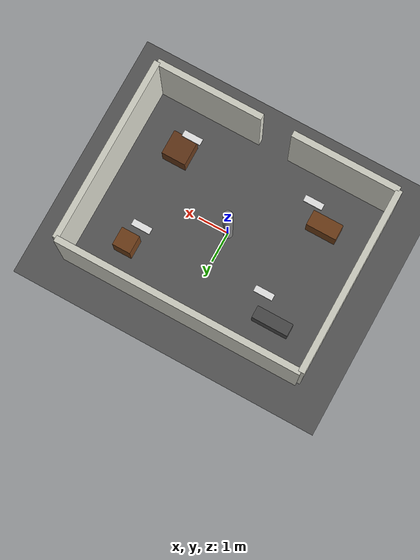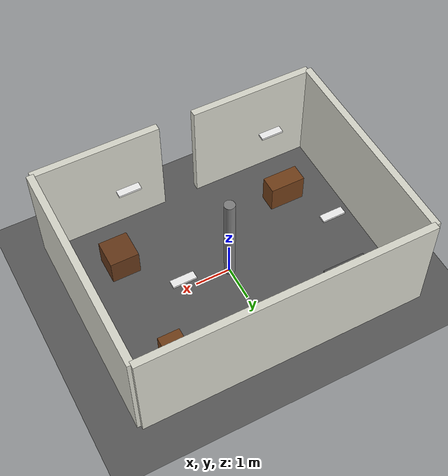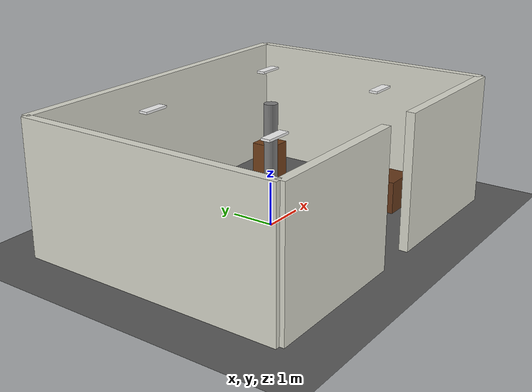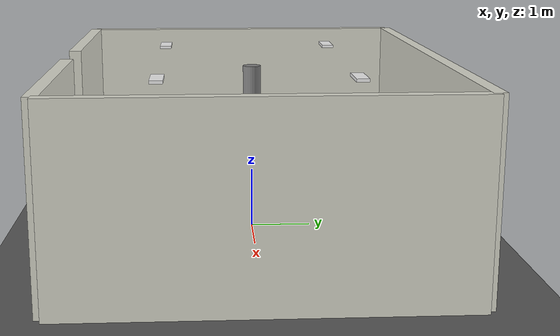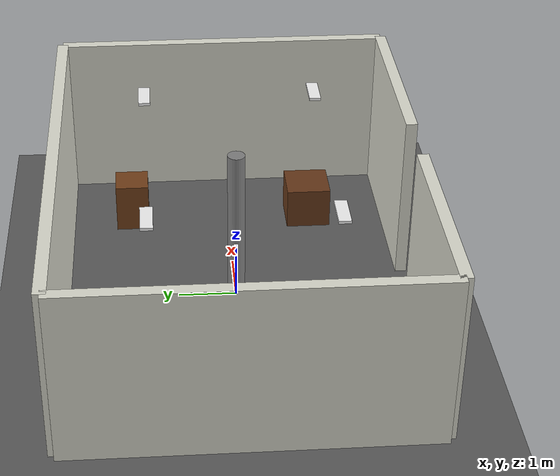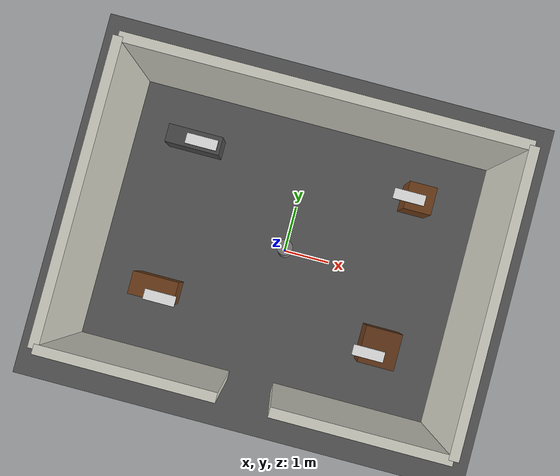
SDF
<?xml version="1.0"?>
<sdf version="1.6">
  <world name="basement_room_world">

    <!-- ── Physics ─────────────────────────────────────────────────────── -->
    <physics type="ode">
      <max_step_size>0.001</max_step_size>
      <real_time_factor>1.0</real_time_factor>
      <real_time_update_rate>1000</real_time_update_rate>
    </physics>

    <!-- ── Sun directional light ───────────────────────────────────────── -->
    <light name="sun" type="directional">
      <cast_shadows>true</cast_shadows>
      <pose>0 0 10 0 0 0</pose>
      <diffuse>0.4 0.4 0.4 1</diffuse>
      <specular>0.1 0.1 0.1 1</specular>
      <direction>-0.5 0.1 -0.9</direction>
    </light>

    <!-- ── 4 ceiling lights ────────────────────────────────────────────── -->
    <light name="ceiling_light_1" type="point">
      <pose>-2.0 -1.5 2.8 0 0 0</pose>
      <diffuse>0.95 0.92 0.85 1</diffuse>
      <specular>0.1 0.1 0.1 1</specular>
      <attenuation>
        <range>10</range>
        <constant>0.3</constant>
        <linear>0.08</linear>
        <quadratic>0.02</quadratic>
      </attenuation>
    </light>

    <light name="ceiling_light_2" type="point">
      <pose>2.0 -1.5 2.8 0 0 0</pose>
      <diffuse>0.95 0.92 0.85 1</diffuse>
      <specular>0.1 0.1 0.1 1</specular>
      <attenuation>
        <range>10</range>
        <constant>0.3</constant>
        <linear>0.08</linear>
        <quadratic>0.02</quadratic>
      </attenuation>
    </light>

    <light name="ceiling_light_3" type="point">
      <pose>-2.0 1.5 2.8 0 0 0</pose>
      <diffuse>0.95 0.92 0.85 1</diffuse>
      <specular>0.1 0.1 0.1 1</specular>
      <attenuation>
        <range>10</range>
        <constant>0.3</constant>
        <linear>0.08</linear>
        <quadratic>0.02</quadratic>
      </attenuation>
    </light>

    <light name="ceiling_light_4" type="point">
      <pose>2.0 1.5 2.8 0 0 0</pose>
      <diffuse>0.95 0.92 0.85 1</diffuse>
      <specular>0.1 0.1 0.1 1</specular>
      <attenuation>
        <range>10</range>
        <constant>0.3</constant>
        <linear>0.08</linear>
        <quadratic>0.02</quadratic>
      </attenuation>
    </light>

    <!-- ── Floor ───────────────────────────────────────────────────────── -->
    <model name="floor">
      <static>true</static>
      <link name="floor_link">
        <collision name="col">
          <geometry>
            <plane>
              <normal>0 0 1</normal>
              <size>12 10</size>
            </plane>
          </geometry>
          <surface>
            <friction>
              <ode><mu>1.0</mu><mu2>1.0</mu2></ode>
            </friction>
          </surface>
        </collision>
        <visual name="vis">
          <geometry>
            <plane>
              <normal>0 0 1</normal>
              <size>12 10</size>
            </plane>
          </geometry>
          <material>
            <ambient>0.35 0.35 0.35 1</ambient>
            <diffuse>0.35 0.35 0.35 1</diffuse>
          </material>
        </visual>
      </link>
    </model>

    <model name="room">
      <static>true</static>

      <!-- North wall: y = +3 -->
      <link name="wall_north">
        <pose>0 3.0 1.5 0 0 0</pose>
        <collision name="col">
          <geometry><box><size>8.0 0.2 3.0</size></box></geometry>
        </collision>
        <visual name="vis">
          <geometry><box><size>8.0 0.2 3.0</size></box></geometry>
          <material>
            <ambient>0.85 0.85 0.8 1</ambient>
            <diffuse>0.85 0.85 0.8 1</diffuse>
          </material>
        </visual>
      </link>

      <!-- South wall LEFT of doorway: x from -4 to -0.5 (3.5m wide) -->
      <link name="wall_south_left">
        <pose>-2.25 -3.0 1.5 0 0 0</pose>
        <collision name="col">
          <geometry><box><size>3.5 0.2 3.0</size></box></geometry>
        </collision>
        <visual name="vis">
          <geometry><box><size>3.5 0.2 3.0</size></box></geometry>
          <material>
            <ambient>0.85 0.85 0.8 1</ambient>
            <diffuse>0.85 0.85 0.8 1</diffuse>
          </material>
        </visual>
      </link>

      <!-- South wall RIGHT of doorway: x from +0.5 to +4 (3.5m wide) -->
      <link name="wall_south_right">
        <pose>2.25 -3.0 1.5 0 0 0</pose>
        <collision name="col">
          <geometry><box><size>3.5 0.2 3.0</size></box></geometry>
        </collision>
        <visual name="vis">
          <geometry><box><size>3.5 0.2 3.0</size></box></geometry>
          <material>
            <ambient>0.85 0.85 0.8 1</ambient>
            <diffuse>0.85 0.85 0.8 1</diffuse>
          </material>
        </visual>
      </link>

      <!-- East wall: x = +4 -->
      <link name="wall_east">
        <pose>4.0 0 1.5 0 0 0</pose>
        <collision name="col">
          <geometry><box><size>0.2 6.0 3.0</size></box></geometry>
        </collision>
        <visual name="vis">
          <geometry><box><size>0.2 6.0 3.0</size></box></geometry>
          <material>
            <ambient>0.85 0.85 0.8 1</ambient>
            <diffuse>0.85 0.85 0.8 1</diffuse>
          </material>
        </visual>
      </link>

      <!-- West wall: x = -4 -->
      <link name="wall_west">
        <pose>-4.0 0 1.5 0 0 0</pose>
        <collision name="col">
          <geometry><box><size>0.2 6.0 3.0</size></box></geometry>
        </collision>
        <visual name="vis">
          <geometry><box><size>0.2 6.0 3.0</size></box></geometry>
          <material>
            <ambient>0.85 0.85 0.8 1</ambient>
            <diffuse>0.85 0.85 0.8 1</diffuse>
          </material>
        </visual>
      </link>

      <!-- ── 4 ceiling light fixture visuals ────────────────────────── -->
      <link name="light_fixture_1">
        <pose>-2.0 -1.5 2.9 0 0 0</pose>
        <visual name="vis">
          <geometry><box><size>0.6 0.2 0.05</size></box></geometry>
          <material>
            <ambient>0.95 0.95 0.95 1</ambient>
            <diffuse>0.95 0.95 0.95 1</diffuse>
            <emissive>0.8 0.8 0.8 1</emissive>
          </material>
        </visual>
      </link>

      <link name="light_fixture_2">
        <pose>2.0 -1.5 2.9 0 0 0</pose>
        <visual name="vis">
          <geometry><box><size>0.6 0.2 0.05</size></box></geometry>
          <material>
            <ambient>0.95 0.95 0.95 1</ambient>
            <diffuse>0.95 0.95 0.95 1</diffuse>
            <emissive>0.8 0.8 0.8 1</emissive>
          </material>
        </visual>
      </link>

      <link name="light_fixture_3">
        <pose>-2.0 1.5 2.9 0 0 0</pose>
        <visual name="vis">
          <geometry><box><size>0.6 0.2 0.05</size></box></geometry>
          <material>
            <ambient>0.95 0.95 0.95 1</ambient>
            <diffuse>0.95 0.95 0.95 1</diffuse>
            <emissive>0.8 0.8 0.8 1</emissive>
          </material>
        </visual>
      </link>

      <link name="light_fixture_4">
        <pose>2.0 1.5 2.9 0 0 0</pose>
        <visual name="vis">
          <geometry><box><size>0.6 0.2 0.05</size></box></geometry>
          <material>
            <ambient>0.95 0.95 0.95 1</ambient>
            <diffuse>0.95 0.95 0.95 1</diffuse>
            <emissive>0.8 0.8 0.8 1</emissive>
          </material>
        </visual>
      </link>
    </model>

    <!-- ── Furniture obstacles ─────────────────────────────────────────── -->

    <!-- Box A: table 1.0x0.5x0.8m, brown -->
    <model name="box_a">
      <static>true</static>
      <pose>-2.5 -1.5 0.4 0 0 0</pose>
      <link name="link">
        <collision name="col">
          <geometry><box><size>1.0 0.5 0.8</size></box></geometry>
        </collision>
        <visual name="vis">
          <geometry><box><size>1.0 0.5 0.8</size></box></geometry>
          <material>
            <ambient>0.45 0.25 0.1 1</ambient>
            <diffuse>0.45 0.25 0.1 1</diffuse>
          </material>
        </visual>
      </link>
    </model>

    <!-- Box B: cabinet 0.8x0.8x0.75m, brown -->
    <model name="box_b">
      <static>true</static>
      <pose>2.5 -1.5 0.375 0 0 0</pose>
      <link name="link">
        <collision name="col">
          <geometry><box><size>0.8 0.8 0.75</size></box></geometry>
        </collision>
        <visual name="vis">
          <geometry><box><size>0.8 0.8 0.75</size></box></geometry>
          <material>
            <ambient>0.4 0.22 0.1 1</ambient>
            <diffuse>0.4 0.22 0.1 1</diffuse>
          </material>
        </visual>
      </link>
    </model>

    <!-- Box C: shelf 1.2x0.4x0.7m, dark gray -->
    <model name="box_c">
      <static>true</static>
      <pose>-2.5 1.8 0.35 0 0 0</pose>
      <link name="link">
        <collision name="col">
          <geometry><box><size>1.2 0.4 0.7</size></box></geometry>
        </collision>
        <visual name="vis">
          <geometry><box><size>1.2 0.4 0.7</size></box></geometry>
          <material>
            <ambient>0.3 0.3 0.3 1</ambient>
            <diffuse>0.3 0.3 0.3 1</diffuse>
          </material>
        </visual>
      </link>
    </model>

    <!-- Box D: storage 0.6x0.6x0.9m, brown -->
    <model name="box_d">
      <static>true</static>
      <pose>2.5 1.8 0.45 0 0 0</pose>
      <link name="link">
        <collision name="col">
          <geometry><box><size>0.6 0.6 0.9</size></box></geometry>
        </collision>
        <visual name="vis">
          <geometry><box><size>0.6 0.6 0.9</size></box></geometry>
          <material>
            <ambient>0.45 0.25 0.1 1</ambient>
            <diffuse>0.45 0.25 0.1 1</diffuse>
          </material>
        </visual>
      </link>
    </model>

    <!-- Cylindrical pillar at center -->
    <model name="pillar">
      <static>true</static>
      <pose>0 0 1.4 0 0 0</pose>
      <link name="link">
        <collision name="col">
          <geometry><cylinder><radius>0.15</radius><length>2.8</length></cylinder></geometry>
        </collision>
        <visual name="vis">
          <geometry><cylinder><radius>0.15</radius><length>2.8</length></cylinder></geometry>
          <material>
            <ambient>0.5 0.5 0.5 1</ambient>
            <diffuse>0.5 0.5 0.5 1</diffuse>
          </material>
        </visual>
      </link>
    </model>

  </world>
</sdf>
